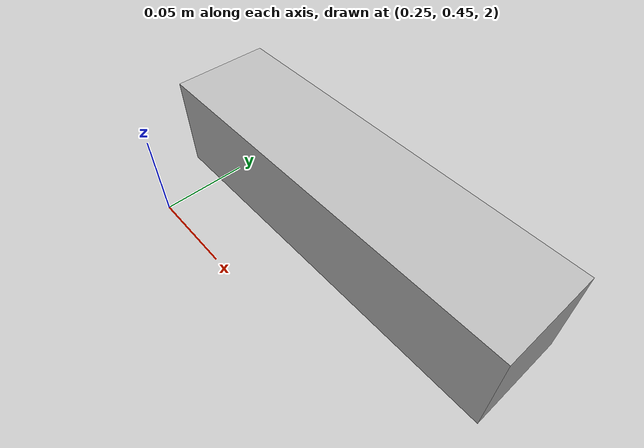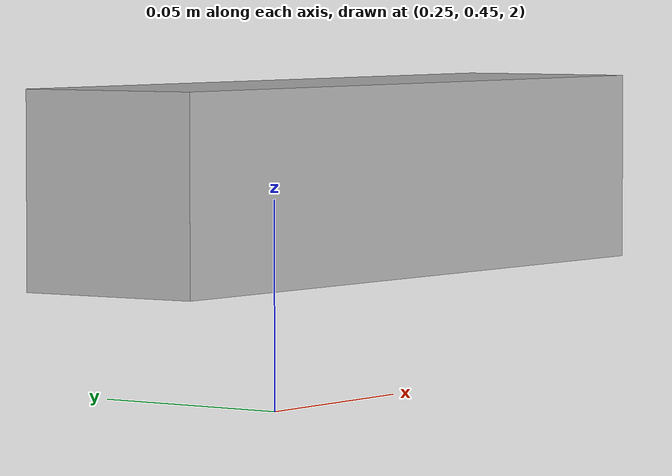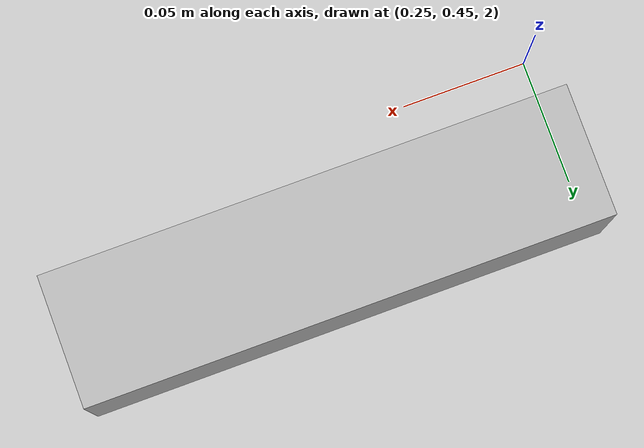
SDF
<?xml version="1.0" ?>
<sdf version="1.5">
    <model name="camera">
        <pose>0.35 0.5 2.1 0 1.57 -1.57</pose>
        <link name="camera_link">
            <gravity>false</gravity>
            <pose>0.05 0 0 0 0 0</pose>
            <inertial>
                <mass>0.1</mass>
                <inertia>
                    <ixx>0.000166667</ixx>
                    <iyy>0.000166667</iyy>
                    <izz>0.000166667</izz>
                </inertia>
            </inertial>
            <collision name="collision">
                <geometry>
                    <box>
                        <size>0.05 0.2 0.05</size>
                    </box>
                </geometry>
            </collision>
            <visual name="visual">
                <geometry>
                    <box>
                        <size>0.05 0.2 0.05</size>
                    </box>
                </geometry>
            </visual>
            <sensor name="camera" type="camera">
                <camera>
                    <horizontal_fov>1.25</horizontal_fov>
                    <image>
                        <width>1280</width>
                        <height>720</height>
                        <format>R8G8B8</format>
                    </image>
                    <noise>
                        <type>gaussian</type>
                        <mean>0.0</mean>
                        <stddev>0.007</stddev>
                    </noise>
                    <clip>
                        <near>0.1</near>
                        <far>20</far>
                    </clip>
                    <optical_frame_id>camera_link</optical_frame_id>
                </camera>
                <always_on>1</always_on>
                <update_rate>50</update_rate>
                <visualize>true</visualize>
                <topic>camera/image</topic>
            </sensor>
        </link>
    </model>

</sdf>
